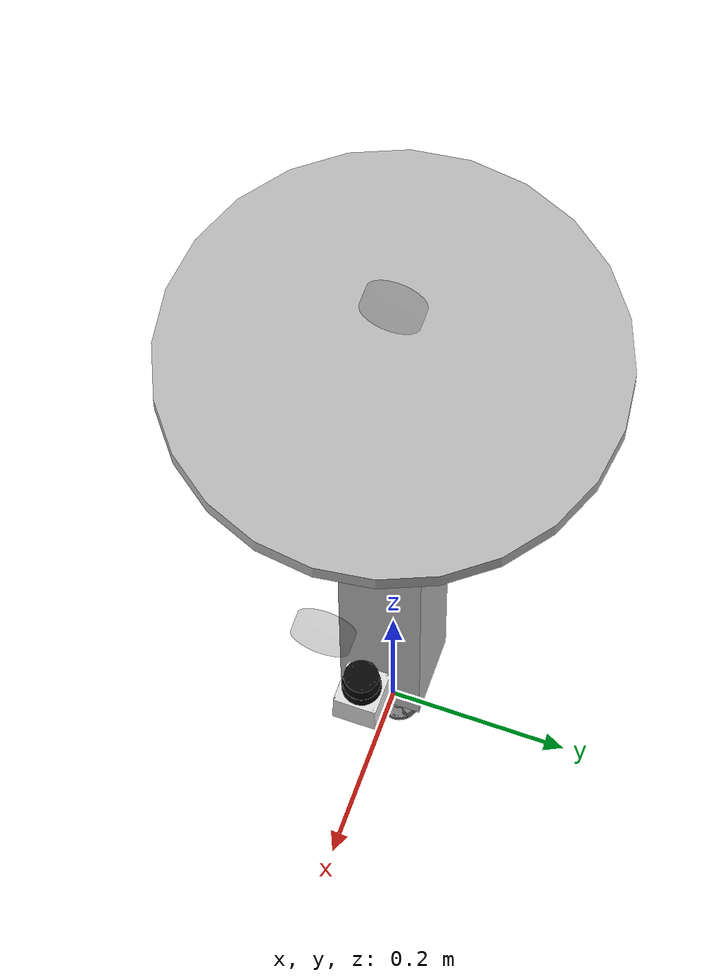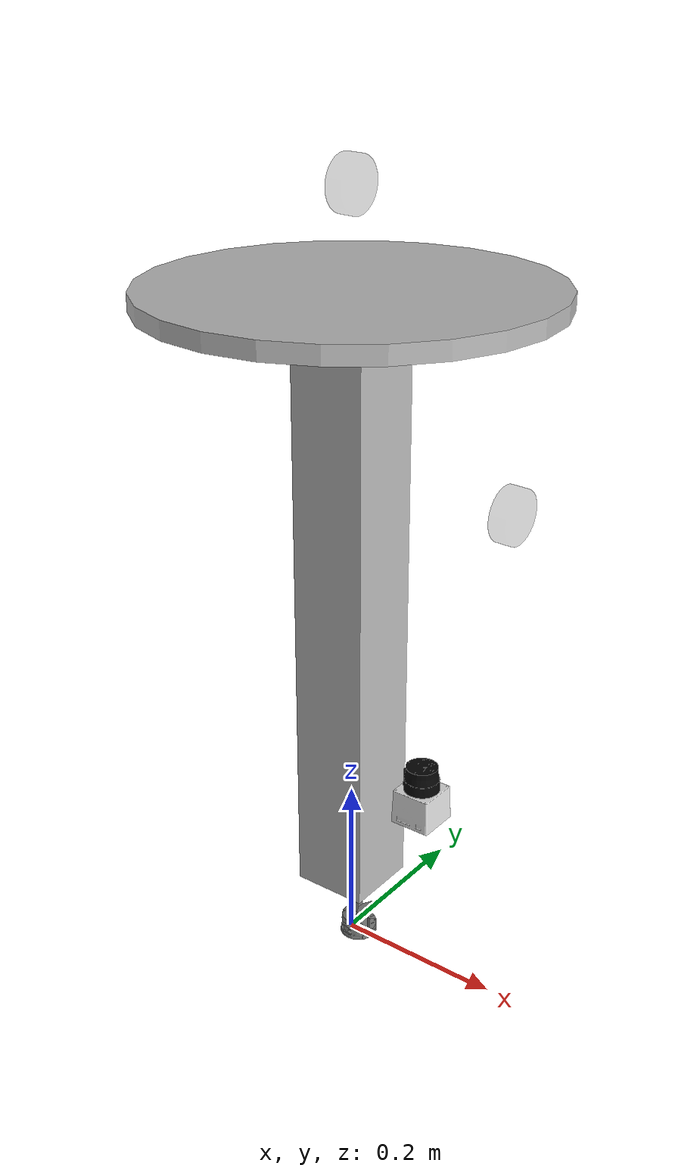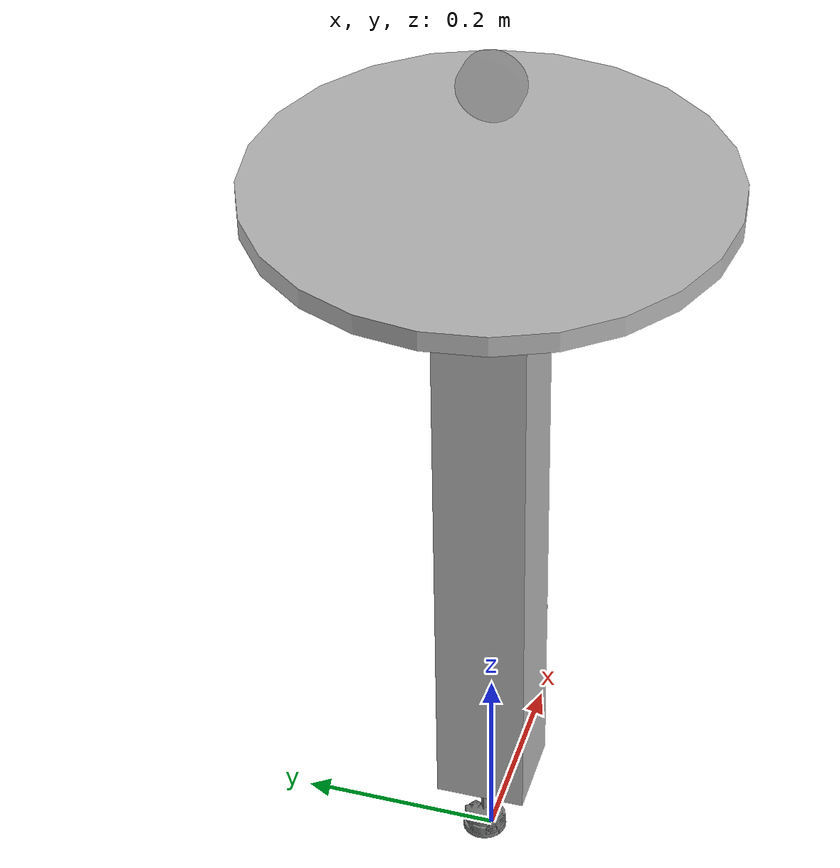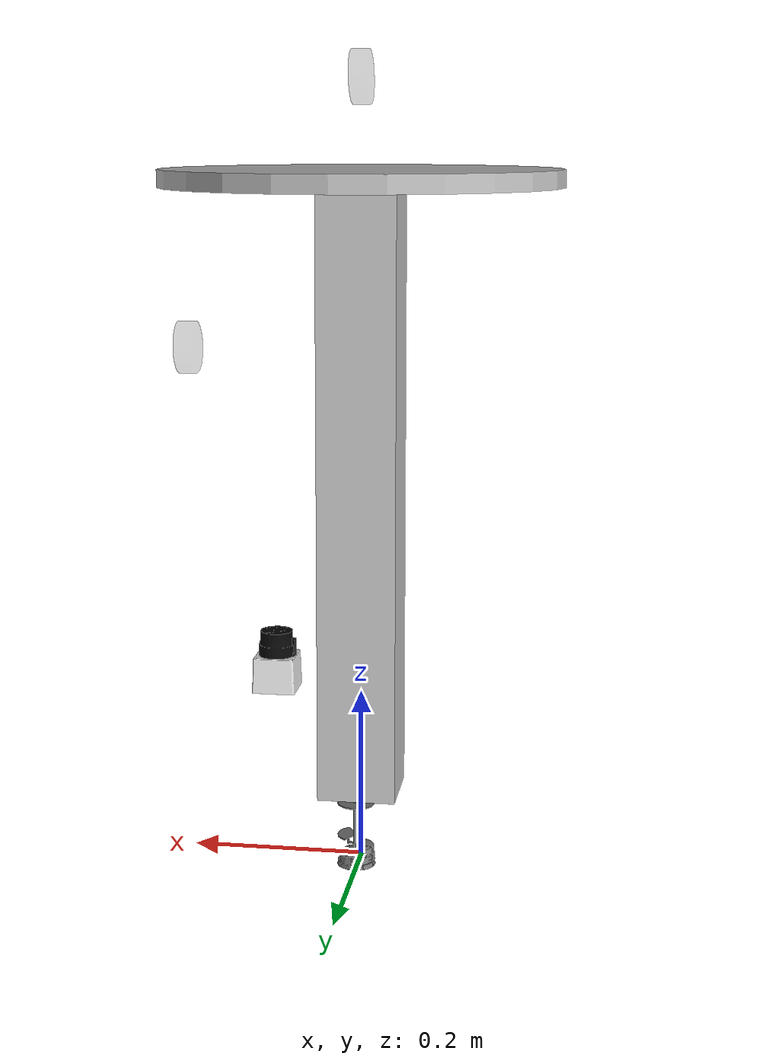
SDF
<?xml version="1.0" ?>
<sdf version="1.4">

	<model name="robotino_opposing_1">

		<include>
			<uri>model://robotino3</uri>
			<pose>0 0 0 0 0 1.5775</pose>
		</include>

	<!-- Hokuyo Laser -->
	<link name="laser_link">
		<pose>0.1 0 0.235 0 0 0</pose>
		<inertial>
			<mass>0.1</mass>
		</inertial>
		<visual name="visual">
			<geometry>
				<mesh>
					<uri>model://hokuyo/meshes/hokuyo.dae</uri>
				</mesh>
			</geometry>
		</visual>
		<collision name="collision-base">
			<pose>0 0 -0.0145 0 0 0</pose>
			<geometry>
				<box>
					<size>0.05 0.05 0.041</size>
				</box>
			</geometry>
		</collision>
		<collision name="collision-top">
			<pose>0 0 0.0205 0 0 0</pose>
			<geometry>
				<cylinder>
					<radius>0.021</radius>
					<length>0.029</length>
				</cylinder>
			</geometry>
		</collision>

		<sensor name="laser" type="gpu_ray">
			<pose>0.01 0 0.0175 0 -0 0</pose>
			<visualize>true</visualize>
			<ray>
				<scan>
					<horizontal>
						<samples>682</samples>
						<resolution>1</resolution>
						<min_angle>-2.094395</min_angle>
						<max_angle>2.094395</max_angle>
					</horizontal>
				</scan>
				<range>
					<min>0.020</min>
					<max>5.600</max>
					<resolution>0.01</resolution>
				</range>
				<noise>
					<type>gaussian</type>
					<mean>0.0</mean>
					<stddev>0.01</stddev>
				</noise>
			</ray>
			<plugin name="gazebo_ros_head_hokuyo_controller" filename="libgazebo_ros_gpu_laser.so">
				<topicName>opposing1/hardware/scan</topicName>
				<frameName>opposing1/laser_link</frameName>
			</plugin>

			<always_on>1</always_on>
			<update_rate>10</update_rate>
		</sensor>
	</link>

	<joint name="hokuyo_joint" type="revolute">
		<parent>robotino3::body</parent>
		<child>laser_link</child>
		<axis>
			<xyz>0 0 1</xyz>
			<limit>
				<upper>0</upper>
				<lower>0</lower>
			</limit>
		</axis>
	</joint>

	<!-- tower camera (for ARTAG) -->
		<link name="tower_camera_link">
			<pose>0.2 0 0.6 0 0 0</pose>

			<gravity>false</gravity>

			<inertial>
				<mass>0.02</mass>
			</inertial>

			<visual name="visual">
				<pose>0 0 0 0 1.6 0</pose>
				<geometry>
					<cylinder>
						<length>0.02</length>
						<radius>0.03</radius>
					</cylinder>
				</geometry>
				<cast_shadows>false</cast_shadows>
				<material>
					<ambient>0.0 0.0 0.0 0.1</ambient>
					<diffuse>0.0 0.0 0.0 0.11</diffuse>
				</material>
			</visual>

			<sensor type="camera" name="tower_camera">
				<update_rate>30.0</update_rate>
				<camera name="tower_camera">
					<horizontal_fov>1.3962634</horizontal_fov>
					<image>
						<width>1200</width>
						<height>700</height>
						<format>R8G8B8</format>
					</image>
					<clip>
						<near>0.02</near>
						<far>300</far>
					</clip>
					<distortion>
						<k1>0</k1>
						<k2>0</k2>
						<k3>0</k3>
						<p1>0</p1>
						<p2>0</p2>
						<center>0.5 0.5</center>
					</distortion>
				</camera>
				<plugin name="camera_controller" filename="libgazebo_ros_camera.so">
					<alwaysOn>true</alwaysOn>
					<updateRate>0.0</updateRate>
					<cameraName>opposing1/hardware/camera/tower_camera</cameraName>
					<imageTopicName>image_raw</imageTopicName>
					<cameraInfoTopicName>camera_info</cameraInfoTopicName>
					<frameName>opposing1/tower_camera_link</frameName>
					<hackBaseline>0.07</hackBaseline>
					<distortionK1>0.0</distortionK1>
					<distortionK2>0.0</distortionK2>
					<distortionK3>0.0</distortionK3>
					<distortionT1>0.0</distortionT1>
					<distortionT2>0.0</distortionT2>
				</plugin>
			</sensor>
		</link>

	<joint name="tower_camera_joint" type="revolute">
		<parent>robotino3::body</parent>
		<child>tower_camera_link</child>
		<axis>
			<xyz>0 0 0.3</xyz>
			<limit>
				<upper>0</upper>
				<lower>0</lower>
			</limit>
		</axis>
	</joint>

	<!-- platform camera (for light signals) -->
		<link name="platform_camera_link">
			<pose>0 0 0.9 0 0 0</pose>

			<gravity>false</gravity>

			<inertial>
				<mass>0.02</mass>
			</inertial>

			<visual name="visual">
				<pose>0 0 0 0 1.6 0</pose>
				<geometry>
					<cylinder>
						<length>0.02</length>
						<radius>0.03</radius>
					</cylinder>
				</geometry>
				<cast_shadows>false</cast_shadows>
				<material>
					<ambient>0.0 0.0 0.0 0.1</ambient>
					<diffuse>0.0 0.0 0.0 0.11</diffuse>
				</material>
			</visual>

			<sensor type="camera" name="platform_camera">
				<update_rate>30.0</update_rate>
				<camera name="platform_camera">
					<horizontal_fov>1.3962634</horizontal_fov>
					<image>
						<width>1200</width>
						<height>700</height>
						<format>R8G8B8</format>
					</image>
					<clip>
						<near>0.02</near>
						<far>300</far>
					</clip>
					<distortion>
						<k1>0</k1>
						<k2>0</k2>
						<k3>0</k3>
						<p1>0</p1>
						<p2>0</p2>
						<center>0.5 0.5</center>
					</distortion>
				</camera>
				<plugin name="camera_controller" filename="libgazebo_ros_camera.so">
					<alwaysOn>true</alwaysOn>
					<updateRate>0.0</updateRate>
					<cameraName>opposing1/hardware/camera/platform_camera</cameraName>
					<imageTopicName>image_raw</imageTopicName>
					<cameraInfoTopicName>camera_info</cameraInfoTopicName>
					<frameName>opposing1/platform_camera_link</frameName>
					<hackBaseline>0.07</hackBaseline>
					<distortionK1>0.0</distortionK1>
					<distortionK2>0.0</distortionK2>
					<distortionK3>0.0</distortionK3>
					<distortionT1>0.0</distortionT1>
					<distortionT2>0.0</distortionT2>
				</plugin>
			</sensor>
		</link>

	<joint name="platform_camera_joint" type="revolute">
		<parent>robotino3::body</parent>
		<child>platform_camera_link</child>
		<axis>
			<xyz>0 0 1</xyz>
			<limit>
				<upper>0</upper>
				<lower>0</lower>
			</limit>
		</axis>
	</joint>

	</model>
</sdf>

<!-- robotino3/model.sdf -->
<sdf version="1.4">
  <model name="robotino3">
    <static>false</static>
    <link name="body">
      <pose>0 0 0.001 0 0 0</pose>
      <gravity>true</gravity>
      <inertial>
        <mass>30</mass>
        <pose>0 0 0.075 0 0 0</pose>
        <inertia>
	  <!-- according to http://en.wikipedia.org/wiki/List_of_moments_of_inertia for a solid cylinder of radius r=0.225, height h=0.15, mass m=30 -->
          <ixx>0.4359375</ixx>
          <ixy>0.0</ixy>
          <ixz>0.0</ixz>
          <iyy>0.4359375</iyy>
          <iyz>0.0</iyz>
          <izz>0.759375</izz>
        </inertia>
      </inertial>
      <visual name="body-visual">
        <pose>0.01 0 0.00 0 0 1.570795</pose>
        <geometry>
          <mesh>
            <uri>model://robotino3/meshes/robotino3.dae</uri>
            <scale>0.001 0.001 0.001</scale>
          </mesh>
        </geometry>
        <cast_shadows>false</cast_shadows>
      </visual>

      <collision name="body1-collision">
        <pose>0 0 0.735 0 0 0</pose>
        <geometry>
          <cylinder>
            <length>0.07</length>
            <radius>0.225</radius>
          </cylinder>
        </geometry>
        <surface>
          <friction>
            <ode>
              <mu>0.2</mu>
              <mu2>0.2</mu2>
              <slip1>0.8</slip1>
              <slip2>0.8</slip2>
            </ode>
          </friction>
          <contact>
            <ode>
              <min_depth>0.05</min_depth>
            </ode>
          </contact>
        </surface>
      </collision>

      <collision name="body2-collision">
        <pose>0 0 0.35 0 0 0</pose>
        <geometry>
          <cylinder>
            <length>0.68</length>
            <radius>0.06</radius>
          </cylinder>
        </geometry>
        <surface>
          <friction>
            <ode>
              <mu>0.2</mu>
              <mu2>0.2</mu2>
              <slip1>0.8</slip1>
              <slip2>0.8</slip2>
            </ode>
          </friction>
          <contact>
            <ode>
              <min_depth>0.05</min_depth>
            </ode>
          </contact>
        </surface>
      </collision>

      <collision name="body3-collision">
        <pose>0 0 0.035 0 0 0</pose>
        <geometry>
          <cylinder>
            <length>0.07</length>
            <radius>0.225</radius>
          </cylinder>
        </geometry>
        <surface>
          <friction>
            <ode>
              <mu>0.2</mu>
              <mu2>0.2</mu2>
              <slip1>0.8</slip1>
              <slip2>0.8</slip2>
            </ode>
          </friction>
          <contact>
            <ode>
              <min_depth>0.05</min_depth>
            </ode>
          </contact>
        </surface>
      </collision>
      <visual name="tower">
        <pose>0.00 0.00 0.43 0 0 0</pose>
        <geometry>
          <box>
            <size>0.09 0.09 0.70</size>
          </box>
        </geometry>
      </visual>
      <visual name="tower_plate">
        <pose>0 0 0.79 0 0 0</pose>
        <geometry>
          <cylinder>
            <length>0.02</length>
            <radius>0.225</radius>
          </cylinder>
        </geometry>
      </visual>
    </link>

    <plugin name="Motor" filename="libmotor.so"/>
    <plugin name="Gyro" filename="libgyro.so"/>
    <plugin name="GPS" filename="libgps.so"/>
    <plugin name="LightSignalDetection" filename="liblight_signal_detection.so"/>
  </model>
</sdf>
